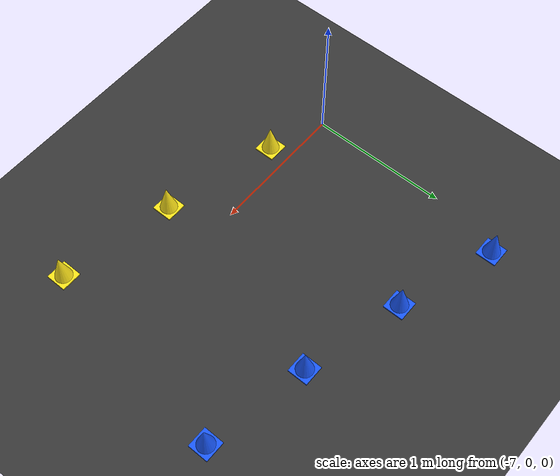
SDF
<sdf version="1.8">
 <world name="track_with_cones">
  <model name="ground_plane">
   <static>true</static>
   <link name="link">
    <collision name="collision">
     <geometry><plane><normal>0 0 1</normal><size>100 100</size></plane></geometry>
     <surface><friction><ode><mu>100</mu><mu2>100</mu2></ode></friction></surface>
    </collision>
    <visual name="visual">
     <geometry><plane><normal>0 0 1</normal><size>100 100</size></plane></geometry>
     <material>
      <ambient>0.22 0.22 0.22 1</ambient>
      <diffuse>0.22 0.22 0.22 1</diffuse>
      <specular>0.05 0.05 0.05 1</specular>
     </material>
    </visual>
   </link>
  </model>
  <model name="cone_blue_98">
   <static>true</static>
   <pose>-6.8865 1.5216 0.11 0 0 0</pose>
   <link name="link">
    <visual name="base_visual">
     <pose>0 0 -0.105 0 0 0</pose>
     <geometry><box><size>0.15 0.15 0.01</size></box></geometry>
     <material>
      <ambient>0.05 0.25 0.95 1.0</ambient>
      <diffuse>0.10 0.35 1.00 1.0</diffuse>
      <specular>0.2 0.2 0.2 1.0</specular>
     </material>
    </visual>
    <visual name="cone_visual">
     <geometry><cone><radius>0.065</radius><length>0.22</length></cone></geometry>
     <material>
      <ambient>0.05 0.25 0.95 1.0</ambient>
      <diffuse>0.10 0.35 1.00 1.0</diffuse>
      <specular>0.2 0.2 0.2 1.0</specular>
     </material>
    </visual>
    <collision name="collision">
     <geometry><cylinder><radius>0.065</radius><length>0.22</length></cylinder></geometry>
    </collision>
   </link>
  </model>
  <model name="cone_blue_99">
   <static>true</static>
   <pose>-6.1765 1.2863 0.11 0 0 0</pose>
   <link name="link">
    <visual name="base_visual">
     <pose>0 0 -0.105 0 0 0</pose>
     <geometry><box><size>0.15 0.15 0.01</size></box></geometry>
     <material>
      <ambient>0.05 0.25 0.95 1.0</ambient>
      <diffuse>0.10 0.35 1.00 1.0</diffuse>
      <specular>0.2 0.2 0.2 1.0</specular>
     </material>
    </visual>
    <visual name="cone_visual">
     <geometry><cone><radius>0.065</radius><length>0.22</length></cone></geometry>
     <material>
      <ambient>0.05 0.25 0.95 1.0</ambient>
      <diffuse>0.10 0.35 1.00 1.0</diffuse>
      <specular>0.2 0.2 0.2 1.0</specular>
     </material>
    </visual>
    <collision name="collision">
     <geometry><cylinder><radius>0.065</radius><length>0.22</length></cylinder></geometry>
    </collision>
   </link>
  </model>
  <model name="cone_yellow_99">
   <static>true</static>
   <pose>-6.5994 -0.1528 0.11 0 0 0</pose>
   <link name="link">
    <visual name="base_visual">
     <pose>0 0 -0.105 0 0 0</pose>
     <geometry><box><size>0.15 0.15 0.01</size></box></geometry>
     <material>
      <ambient>0.95 0.85 0.05 1.0</ambient>
      <diffuse>1.00 0.90 0.10 1.0</diffuse>
      <specular>0.2 0.2 0.2 1.0</specular>
     </material>
    </visual>
    <visual name="cone_visual">
     <geometry><cone><radius>0.065</radius><length>0.22</length></cone></geometry>
     <material>
      <ambient>0.95 0.85 0.05 1.0</ambient>
      <diffuse>1.00 0.90 0.10 1.0</diffuse>
      <specular>0.2 0.2 0.2 1.0</specular>
     </material>
    </visual>
    <collision name="collision">
     <geometry><cylinder><radius>0.065</radius><length>0.22</length></cylinder></geometry>
    </collision>
   </link>
  </model>
  <model name="cone_blue_100">
   <static>true</static>
   <pose>-5.4422 1.0979 0.11 0 0 0</pose>
   <link name="link">
    <visual name="base_visual">
     <pose>0 0 -0.105 0 0 0</pose>
     <geometry><box><size>0.15 0.15 0.01</size></box></geometry>
     <material>
      <ambient>0.05 0.25 0.95 1.0</ambient>
      <diffuse>0.10 0.35 1.00 1.0</diffuse>
      <specular>0.2 0.2 0.2 1.0</specular>
     </material>
    </visual>
    <visual name="cone_visual">
     <geometry><cone><radius>0.065</radius><length>0.22</length></cone></geometry>
     <material>
      <ambient>0.05 0.25 0.95 1.0</ambient>
      <diffuse>0.10 0.35 1.00 1.0</diffuse>
      <specular>0.2 0.2 0.2 1.0</specular>
     </material>
    </visual>
    <collision name="collision">
     <geometry><cylinder><radius>0.065</radius><length>0.22</length></cylinder></geometry>
    </collision>
   </link>
  </model>
  <model name="cone_yellow_100">
   <static>true</static>
   <pose>-5.7738 -0.3650 0.11 0 0 0</pose>
   <link name="link">
    <visual name="base_visual">
     <pose>0 0 -0.105 0 0 0</pose>
     <geometry><box><size>0.15 0.15 0.01</size></box></geometry>
     <material>
      <ambient>0.95 0.85 0.05 1.0</ambient>
      <diffuse>1.00 0.90 0.10 1.0</diffuse>
      <specular>0.2 0.2 0.2 1.0</specular>
     </material>
    </visual>
    <visual name="cone_visual">
     <geometry><cone><radius>0.065</radius><length>0.22</length></cone></geometry>
     <material>
      <ambient>0.95 0.85 0.05 1.0</ambient>
      <diffuse>1.00 0.90 0.10 1.0</diffuse>
      <specular>0.2 0.2 0.2 1.0</specular>
     </material>
    </visual>
    <collision name="collision">
     <geometry><cylinder><radius>0.065</radius><length>0.22</length></cylinder></geometry>
    </collision>
   </link>
  </model>
  <model name="cone_blue_101">
   <static>true</static>
   <pose>-4.6914 0.9501 0.11 0 0 0</pose>
   <link name="link">
    <visual name="base_visual">
     <pose>0 0 -0.105 0 0 0</pose>
     <geometry><box><size>0.15 0.15 0.01</size></box></geometry>
     <material>
      <ambient>0.05 0.25 0.95 1.0</ambient>
      <diffuse>0.10 0.35 1.00 1.0</diffuse>
      <specular>0.2 0.2 0.2 1.0</specular>
     </material>
    </visual>
    <visual name="cone_visual">
     <geometry><cone><radius>0.065</radius><length>0.22</length></cone></geometry>
     <material>
      <ambient>0.05 0.25 0.95 1.0</ambient>
      <diffuse>0.10 0.35 1.00 1.0</diffuse>
      <specular>0.2 0.2 0.2 1.0</specular>
     </material>
    </visual>
    <collision name="collision">
     <geometry><cylinder><radius>0.065</radius><length>0.22</length></cylinder></geometry>
    </collision>
   </link>
  </model>
  <model name="cone_yellow_101">
   <static>true</static>
   <pose>-4.9445 -0.5283 0.11 0 0 0</pose>
   <link name="link">
    <visual name="base_visual">
     <pose>0 0 -0.105 0 0 0</pose>
     <geometry><box><size>0.15 0.15 0.01</size></box></geometry>
     <material>
      <ambient>0.95 0.85 0.05 1.0</ambient>
      <diffuse>1.00 0.90 0.10 1.0</diffuse>
      <specular>0.2 0.2 0.2 1.0</specular>
     </material>
    </visual>
    <visual name="cone_visual">
     <geometry><cone><radius>0.065</radius><length>0.22</length></cone></geometry>
     <material>
      <ambient>0.95 0.85 0.05 1.0</ambient>
      <diffuse>1.00 0.90 0.10 1.0</diffuse>
      <specular>0.2 0.2 0.2 1.0</specular>
     </material>
    </visual>
    <collision name="collision">
     <geometry><cylinder><radius>0.065</radius><length>0.22</length></cylinder></geometry>
    </collision>
   </link>
  </model>
 </world>
</sdf>
